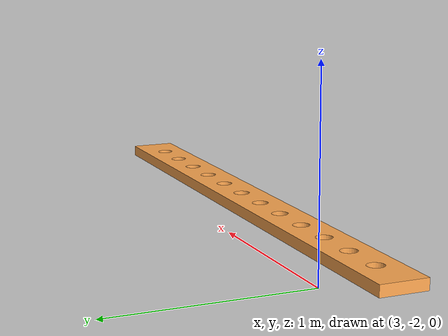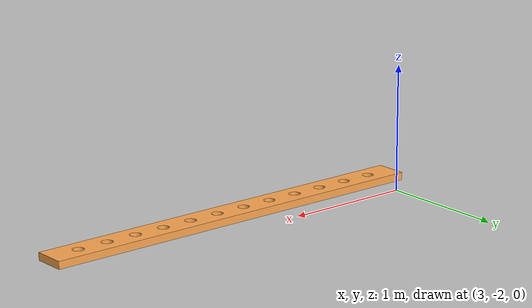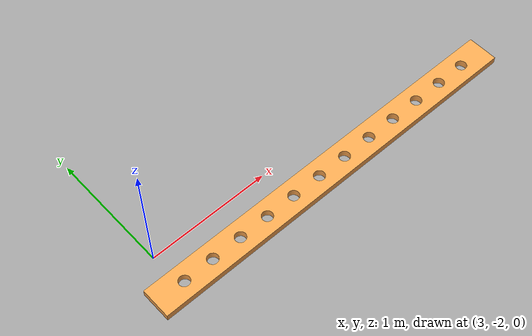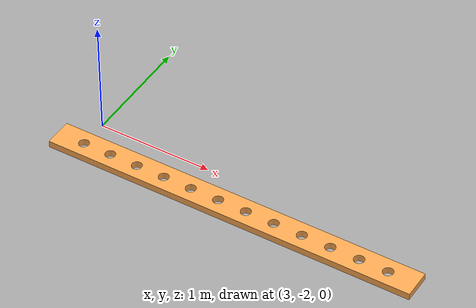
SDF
<?xml version="1.0"?>
<sdf version="1.6">
  <model name="abu2024_mag">
      <pose>0 0 0  0 0 0</pose>
      <static>true</static>
      <link name="body">
        <visual name="visual">
          <geometry>
            <mesh><uri>model://abu2024_mag/meshes/mag.dae</uri></mesh>
          </geometry>
        </visual>
        <collision name="collision">
          <geometry>
            <mesh><uri>model://abu2024_mag/meshes/mag.dae</uri></mesh>
          </geometry>
        </collision>
      </link>
 </model>
</sdf>
